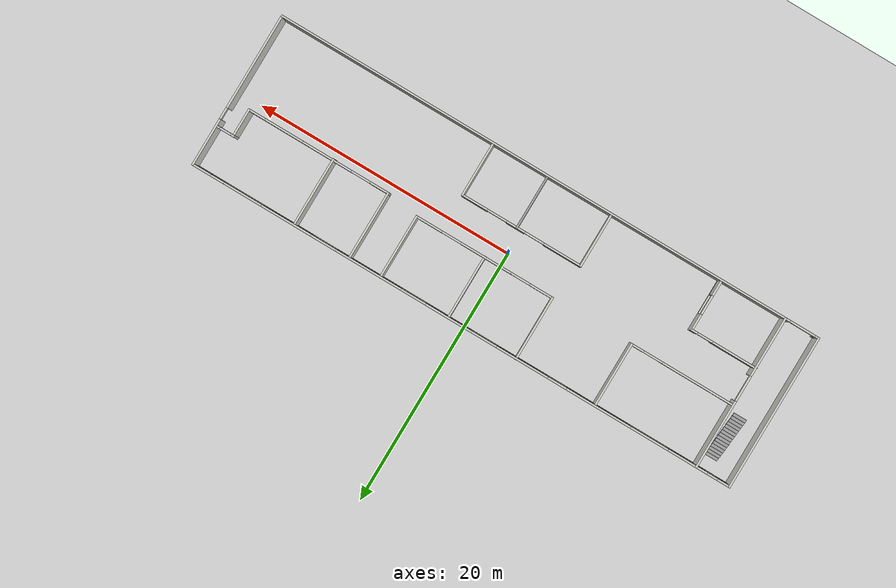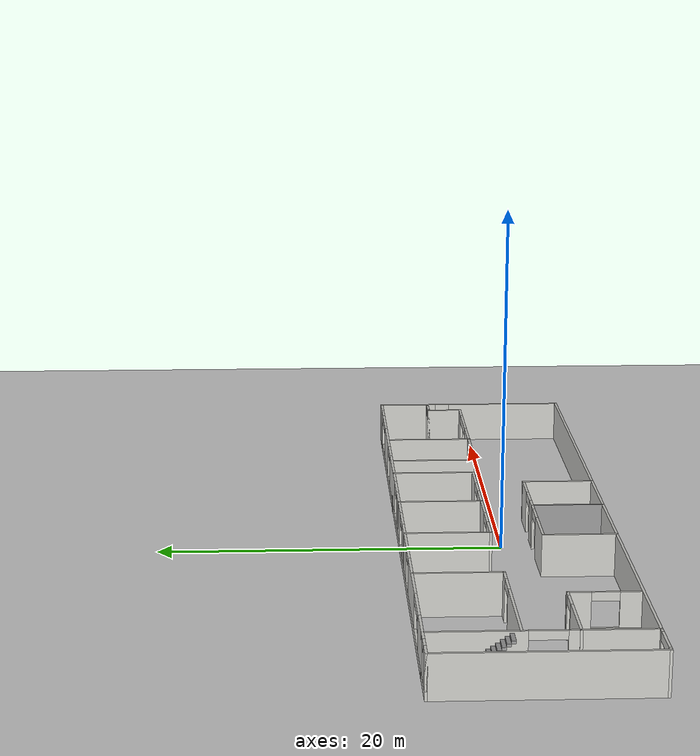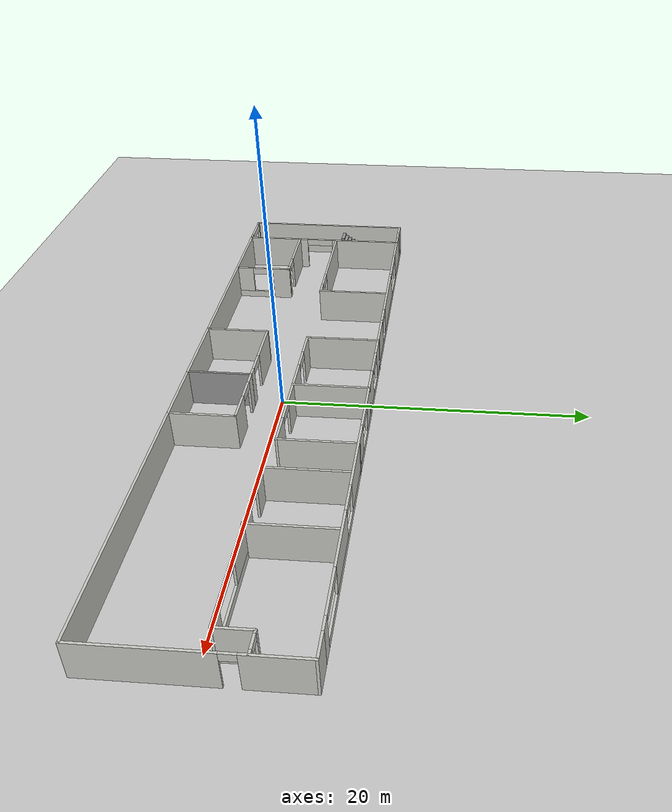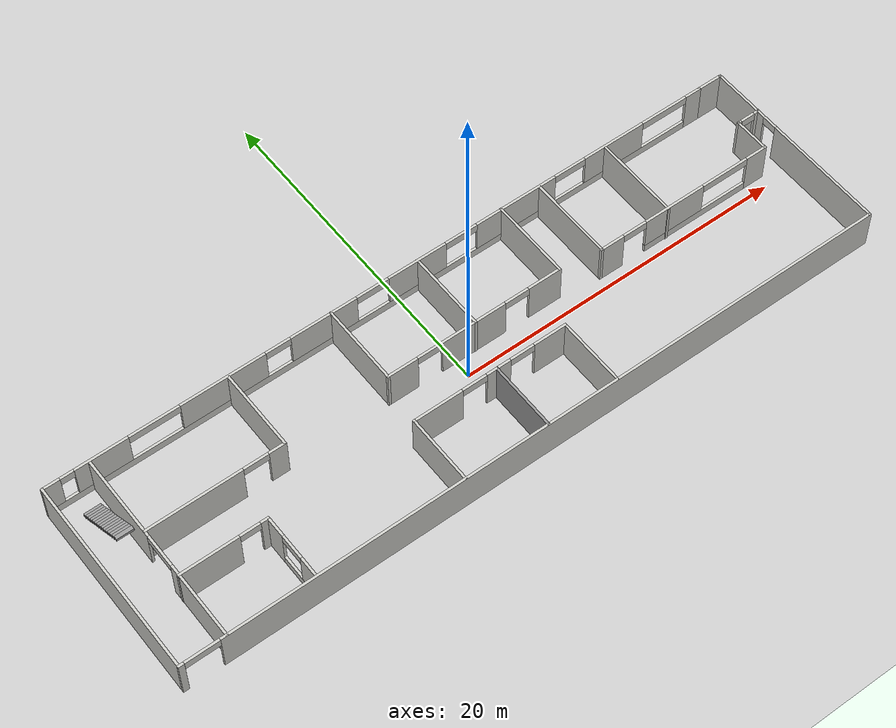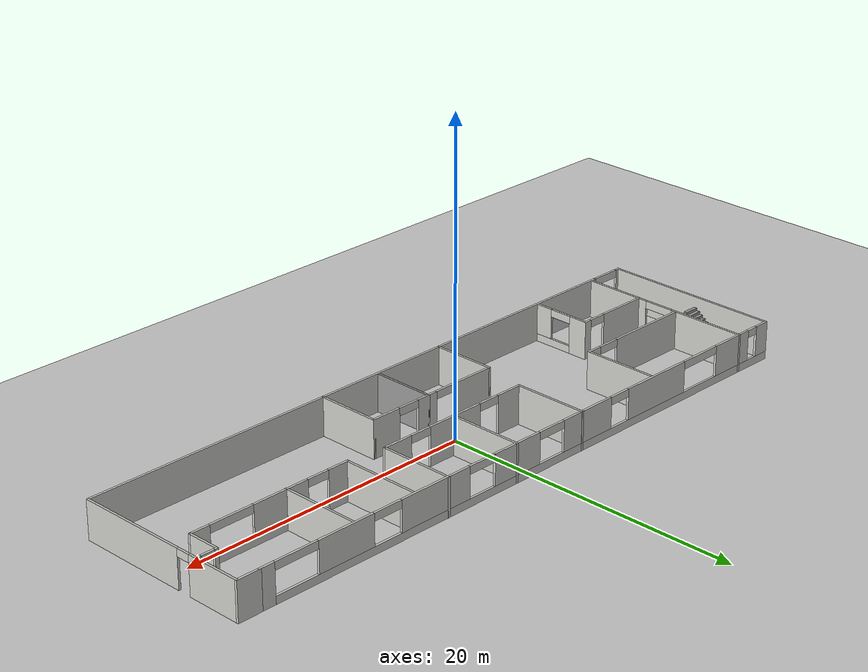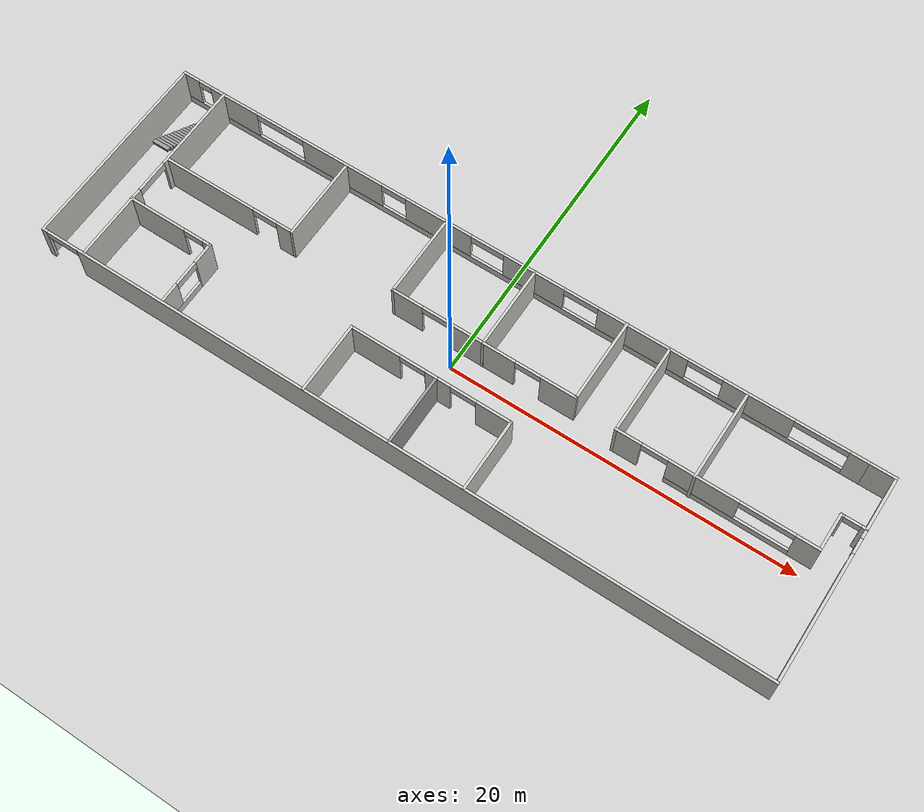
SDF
<sdf version="1.6">
 <world name="default">
  <model name="ground_plane">
   <static>1</static>
   <link name="link">
    <collision name="collision">
     <geometry><plane><normal>0 0 1</normal><size>100 100</size></plane></geometry>
     <surface><friction><ode><mu>100</mu><mu2>50</mu2></ode></friction></surface>
    </collision>
    <visual name="visual">
     <cast_shadows>0</cast_shadows>
     <geometry><plane><normal>0 0 1</normal><size>100 100</size></plane></geometry>
     <material>
      <script><uri>file://media/materials/scripts/gazebo.material</uri><name>Gazebo/Grey</name></script>
     </material>
    </visual>
   </link>
  </model>
  <model name="match_7">
   <pose>0.21975 -0.0084 0 0 -0 0</pose>
   <link name="Stairs_0">
    <visual name="Stairs_0_Visual_0">
     <pose>-19.5832 4.79108 0.083333 0 -0 0</pose>
     <geometry><box><size>1 0.233333 0.166667</size></box></geometry>
     <material>
      <script><uri>file://media/materials/scripts/gazebo.material</uri><name>Gazebo/Grey</name></script>
      <ambient>0.701961 0.717647 0.721569 1</ambient>
     </material>
    </visual>
    <collision name="Stairs_0_Collision_0">
     <geometry><box><size>1 0.233333 0.166667</size></box></geometry>
     <pose>-19.5832 4.79108 0.083333 0 -0 0</pose>
    </collision>
    <visual name="Stairs_0_Visual_1">
     <pose>-19.5832 4.55774 0.25 0 -0 0</pose>
     <geometry><box><size>1 0.233333 0.166667</size></box></geometry>
     <material>
      <script><uri>file://media/materials/scripts/gazebo.material</uri><name>Gazebo/Grey</name></script>
      <ambient>0.701961 0.717647 0.721569 1</ambient>
     </material>
    </visual>
    <collision name="Stairs_0_Collision_1">
     <geometry><box><size>1 0.233333 0.166667</size></box></geometry>
     <pose>-19.5832 4.55774 0.25 0 -0 0</pose>
    </collision>
    <visual name="Stairs_0_Visual_2">
     <pose>-19.5832 4.32441 0.416667 0 -0 0</pose>
     <geometry><box><size>1 0.233333 0.166667</size></box></geometry>
     <material>
      <script><uri>file://media/materials/scripts/gazebo.material</uri><name>Gazebo/Grey</name></script>
      <ambient>0.701961 0.717647 0.721569 1</ambient>
     </material>
    </visual>
    <collision name="Stairs_0_Collision_2">
     <geometry><box><size>1 0.233333 0.166667</size></box></geometry>
     <pose>-19.5832 4.32441 0.416667 0 -0 0</pose>
    </collision>
    <visual name="Stairs_0_Visual_3">
     <pose>-19.5832 4.09108 0.583333 0 -0 0</pose>
     <geometry><box><size>1 0.233333 0.166667</size></box></geometry>
     <material>
      <script><uri>file://media/materials/scripts/gazebo.material</uri><name>Gazebo/Grey</name></script>
      <ambient>0.701961 0.717647 0.721569 1</ambient>
     </material>
    </visual>
    <collision name="Stairs_0_Collision_3">
     <geometry><box><size>1 0.233333 0.166667</size></box></geometry>
     <pose>-19.5832 4.09108 0.583333 0 -0 0</pose>
    </collision>
    <visual name="Stairs_0_Visual_4">
     <pose>-19.5832 3.85774 0.75 0 -0 0</pose>
     <geometry><box><size>1 0.233333 0.166667</size></box></geometry>
     <material>
      <script><uri>file://media/materials/scripts/gazebo.material</uri><name>Gazebo/Grey</name></script>
      <ambient>0.701961 0.717647 0.721569 1</ambient>
     </material>
    </visual>
    <collision name="Stairs_0_Collision_4">
     <geometry><box><size>1 0.233333 0.166667</size></box></geometry>
     <pose>-19.5832 3.85774 0.75 0 -0 0</pose>
    </collision>
    <visual name="Stairs_0_Visual_5">
     <pose>-19.5832 3.62441 0.916667 0 -0 0</pose>
     <geometry><box><size>1 0.233333 0.166667</size></box></geometry>
     <material>
      <script><uri>file://media/materials/scripts/gazebo.material</uri><name>Gazebo/Grey</name></script>
      <ambient>0.701961 0.717647 0.721569 1</ambient>
     </material>
    </visual>
    <collision name="Stairs_0_Collision_5">
     <geometry><box><size>1 0.233333 0.166667</size></box></geometry>
     <pose>-19.5832 3.62441 0.916667 0 -0 0</pose>
    </collision>
    <visual name="Stairs_0_Visual_6">
     <pose>-19.5832 3.39108 1.08333 0 -0 0</pose>
     <geometry><box><size>1 0.233333 0.166667</size></box></geometry>
     <material>
      <script><uri>file://media/materials/scripts/gazebo.material</uri><name>Gazebo/Grey</name></script>
      <ambient>0.701961 0.717647 0.721569 1</ambient>
     </material>
    </visual>
    <collision name="Stairs_0_Collision_6">
     <geometry><box><size>1 0.233333 0.166667</size></box></geometry>
     <pose>-19.5832 3.39108 1.08333 0 -0 0</pose>
    </collision>
    <visual name="Stairs_0_Visual_7">
     <pose>-19.5832 3.15774 1.25 0 -0 0</pose>
     <geometry><box><size>1 0.233333 0.166667</size></box></geometry>
     <material>
      <script><uri>file://media/materials/scripts/gazebo.material</uri><name>Gazebo/Grey</name></script>
      <ambient>0.701961 0.717647 0.721569 1</ambient>
     </material>
    </visual>
    <collision name="Stairs_0_Collision_7">
     <geometry><box><size>1 0.233333 0.166667</size></box></geometry>
     <pose>-19.5832 3.15774 1.25 0 -0 0</pose>
    </collision>
    <visual name="Stairs_0_Visual_8">
     <pose>-19.5832 2.92441 1.41667 0 -0 0</pose>
     <geometry><box><size>1 0.233333 0.166667</size></box></geometry>
     <material>
      <script><uri>file://media/materials/scripts/gazebo.material</uri><name>Gazebo/Grey</name></script>
      <ambient>0.701961 0.717647 0.721569 1</ambient>
     </material>
    </visual>
    <collision name="Stairs_0_Collision_8">
     <geometry><box><size>1 0.233333 0.166667</size></box></geometry>
     <pose>-19.5832 2.92441 1.41667 0 -0 0</pose>
    </collision>
    <visual name="Stairs_0_Visual_9">
     <pose>-19.5832 2.69108 1.58333 0 -0 0</pose>
     <geometry><box><size>1 0.233333 0.166667</size></box></geometry>
     <material>
      <script><uri>file://media/materials/scripts/gazebo.material</uri><name>Gazebo/Grey</name></script>
      <ambient>0.701961 0.717647 0.721569 1</ambient>
     </material>
    </visual>
    <collision name="Stairs_0_Collision_9">
     <geometry><box><size>1 0.233333 0.166667</size></box></geometry>
     <pose>-19.5832 2.69108 1.58333 0 -0 0</pose>
    </collision>
    <visual name="Stairs_0_Visual_10">
     <pose>-19.5832 2.45774 1.75 0 -0 0</pose>
     <geometry><box><size>1 0.233333 0.166667</size></box></geometry>
     <material>
      <script><uri>file://media/materials/scripts/gazebo.material</uri><name>Gazebo/Grey</name></script>
      <ambient>0.701961 0.717647 0.721569 1</ambient>
     </material>
    </visual>
    <collision name="Stairs_0_Collision_10">
     <geometry><box><size>1 0.233333 0.166667</size></box></geometry>
     <pose>-19.5832 2.45774 1.75 0 -0 0</pose>
    </collision>
    <visual name="Stairs_0_Visual_11">
     <pose>-19.5832 2.22441 1.91667 0 -0 0</pose>
     <geometry><box><size>1 0.233333 0.166667</size></box></geometry>
     <material>
      <script><uri>file://media/materials/scripts/gazebo.material</uri><name>Gazebo/Grey</name></script>
      <ambient>0.701961 0.717647 0.721569 1</ambient>
     </material>
    </visual>
    <collision name="Stairs_0_Collision_11">
     <geometry><box><size>1 0.233333 0.166667</size></box></geometry>
     <pose>-19.5832 2.22441 1.91667 0 -0 0</pose>
    </collision>
    <visual name="Stairs_0_Visual_12">
     <pose>-19.5832 1.99108 2.08333 0 -0 0</pose>
     <geometry><box><size>1 0.233333 0.166667</size></box></geometry>
     <material>
      <script><uri>file://media/materials/scripts/gazebo.material</uri><name>Gazebo/Grey</name></script>
      <ambient>0.701961 0.717647 0.721569 1</ambient>
     </material>
    </visual>
    <collision name="Stairs_0_Collision_12">
     <geometry><box><size>1 0.233333 0.166667</size></box></geometry>
     <pose>-19.5832 1.99108 2.08333 0 -0 0</pose>
    </collision>
    <visual name="Stairs_0_Visual_13">
     <pose>-19.5832 1.75774 2.25 0 -0 0</pose>
     <geometry><box><size>1 0.233333 0.166667</size></box></geometry>
     <material>
      <script><uri>file://media/materials/scripts/gazebo.material</uri><name>Gazebo/Grey</name></script>
      <ambient>0.701961 0.717647 0.721569 1</ambient>
     </material>
    </visual>
    <collision name="Stairs_0_Collision_13">
     <geometry><box><size>1 0.233333 0.166667</size></box></geometry>
     <pose>-19.5832 1.75774 2.25 0 -0 0</pose>
    </collision>
    <visual name="Stairs_0_Visual_14">
     <pose>-19.5832 1.52441 2.41667 0 -0 0</pose>
     <geometry><box><size>1 0.233333 0.166667</size></box></geometry>
     <material>
      <script><uri>file://media/materials/scripts/gazebo.material</uri><name>Gazebo/Grey</name></script>
      <ambient>0.701961 0.717647 0.721569 1</ambient>
     </material>
    </visual>
    <collision name="Stairs_0_Collision_14">
     <geometry><box><size>1 0.233333 0.166667</size></box></geometry>
     <pose>-19.5832 1.52441 2.41667 0 -0 0</pose>
    </collision>
   </link>
   <link name="Wall_1">
    <pose>-0.75 5.91533 0 0 -0 3.14159</pose>
    <visual name="Wall_1_Visual_0">
     <pose>-20.2308 0 1.25 0 -0 0</pose>
     <geometry><box><size>1.03842 0.15 2.5</size></box></geometry>
     <material>
      <script><uri>file://media/materials/scripts/gazebo.material</uri><name>Gazebo/CeilingTiled</name></script>
      <ambient>1 1 1 1</ambient>
     </material>
    </visual>
    <collision name="Wall_1_Collision_0">
     <geometry><box><size>1.03842 0.15 2.5</size></box></geometry>
     <pose>-20.2308 0 1.25 0 -0 0</pose>
    </collision>
    <visual name="Wall_1_Visual_1">
     <pose>0.519211 0 0.25 0 -0 0</pose>
     <geometry><box><size>40.4616 0.15 0.5</size></box></geometry>
     <material>
      <script><uri>file://media/materials/scripts/gazebo.material</uri><name>Gazebo/CeilingTiled</name></script>
      <ambient>1 1 1 1</ambient>
     </material>
    </visual>
    <collision name="Wall_1_Collision_1">
     <geometry><box><size>40.4616 0.15 0.5</size></box></geometry>
     <pose>0.519211 0 0.25 0 -0 0</pose>
    </collision>
    <visual name="Wall_1_Visual_2">
     <pose>-14.7343 0 1.5 0 -0 0</pose>
     <geometry><box><size>3.95454 0.15 2</size></box></geometry>
     <material>
      <script><uri>file://media/materials/scripts/gazebo.material</uri><name>Gazebo/CeilingTiled</name></script>
      <ambient>1 1 1 1</ambient>
     </material>
    </visual>
    <collision name="Wall_1_Collision_2">
     <geometry><box><size>3.95454 0.15 2</size></box></geometry>
     <pose>-14.7343 0 1.5 0 -0 0</pose>
    </collision>
    <visual name="Wall_1_Visual_3">
     <pose>-8.16269 0 1.5 0 -0 0</pose>
     <geometry><box><size>5.1887 0.15 2</size></box></geometry>
     <material>
      <script><uri>file://media/materials/scripts/gazebo.material</uri><name>Gazebo/CeilingTiled</name></script>
      <ambient>1 1 1 1</ambient>
     </material>
    </visual>
    <collision name="Wall_1_Collision_3">
     <geometry><box><size>5.1887 0.15 2</size></box></geometry>
     <pose>-8.16269 0 1.5 0 -0 0</pose>
    </collision>
    <visual name="Wall_1_Visual_4">
     <pose>-1.74639 0 1.5 0 -0 0</pose>
     <geometry><box><size>3.6439 0.15 2</size></box></geometry>
     <material>
      <script><uri>file://media/materials/scripts/gazebo.material</uri><name>Gazebo/CeilingTiled</name></script>
      <ambient>1 1 1 1</ambient>
     </material>
    </visual>
    <collision name="Wall_1_Collision_4">
     <geometry><box><size>3.6439 0.15 2</size></box></geometry>
     <pose>-1.74639 0 1.5 0 -0 0</pose>
    </collision>
    <visual name="Wall_1_Visual_5">
     <pose>4.11915 0 1.5 0 -0 0</pose>
     <geometry><box><size>4.08719 0.15 2</size></box></geometry>
     <material>
      <script><uri>file://media/materials/scripts/gazebo.material</uri><name>Gazebo/CeilingTiled</name></script>
      <ambient>1 1 1 1</ambient>
     </material>
    </visual>
    <collision name="Wall_1_Collision_5">
     <geometry><box><size>4.08719 0.15 2</size></box></geometry>
     <pose>4.11915 0 1.5 0 -0 0</pose>
    </collision>
    <visual name="Wall_1_Visual_6">
     <pose>10.219 0 1.5 0 -0 0</pose>
     <geometry><box><size>5.1125 0.15 2</size></box></geometry>
     <material>
      <script><uri>file://media/materials/scripts/gazebo.material</uri><name>Gazebo/CeilingTiled</name></script>
      <ambient>1 1 1 1</ambient>
     </material>
    </visual>
    <collision name="Wall_1_Collision_6">
     <geometry><box><size>5.1125 0.15 2</size></box></geometry>
     <pose>10.219 0 1.5 0 -0 0</pose>
    </collision>
    <visual name="Wall_1_Visual_7">
     <pose>17.3336 0 1.5 0 -0 0</pose>
     <geometry><box><size>3.1168 0.15 2</size></box></geometry>
     <material>
      <script><uri>file://media/materials/scripts/gazebo.material</uri><name>Gazebo/CeilingTiled</name></script>
      <ambient>1 1 1 1</ambient>
     </material>
    </visual>
    <collision name="Wall_1_Collision_7">
     <geometry><box><size>3.1168 0.15 2</size></box></geometry>
     <pose>17.3336 0 1.5 0 -0 0</pose>
    </collision>
    <visual name="Wall_1_Visual_8">
     <pose>20.221 0 1.5 0 -0 0</pose>
     <geometry><box><size>1.05796 0.15 2</size></box></geometry>
     <material>
      <script><uri>file://media/materials/scripts/gazebo.material</uri><name>Gazebo/CeilingTiled</name></script>
      <ambient>1 1 1 1</ambient>
     </material>
    </visual>
    <collision name="Wall_1_Collision_8">
     <geometry><box><size>1.05796 0.15 2</size></box></geometry>
     <pose>20.221 0 1.5 0 -0 0</pose>
    </collision>
    <visual name="Wall_1_Visual_9">
     <pose>-18.2116 0 2.25 0 -0 0</pose>
     <geometry><box><size>3 0.15 0.5</size></box></geometry>
     <material>
      <script><uri>file://media/materials/scripts/gazebo.material</uri><name>Gazebo/CeilingTiled</name></script>
      <ambient>1 1 1 1</ambient>
     </material>
    </visual>
    <collision name="Wall_1_Collision_9">
     <geometry><box><size>3 0.15 0.5</size></box></geometry>
     <pose>-18.2116 0 2.25 0 -0 0</pose>
    </collision>
    <visual name="Wall_1_Visual_10">
     <pose>-11.757 0 2.25 0 -0 0</pose>
     <geometry><box><size>2 0.15 0.5</size></box></geometry>
     <material>
      <script><uri>file://media/materials/scripts/gazebo.material</uri><name>Gazebo/CeilingTiled</name></script>
      <ambient>1 1 1 1</ambient>
     </material>
    </visual>
    <collision name="Wall_1_Collision_10">
     <geometry><box><size>2 0.15 0.5</size></box></geometry>
     <pose>-11.757 0 2.25 0 -0 0</pose>
    </collision>
    <visual name="Wall_1_Visual_11">
     <pose>-4.56834 0 2.25 0 -0 0</pose>
     <geometry><box><size>2 0.15 0.5</size></box></geometry>
     <material>
      <script><uri>file://media/materials/scripts/gazebo.material</uri><name>Gazebo/CeilingTiled</name></script>
      <ambient>1 1 1 1</ambient>
     </material>
    </visual>
    <collision name="Wall_1_Collision_11">
     <geometry><box><size>2 0.15 0.5</size></box></geometry>
     <pose>-4.56834 0 2.25 0 -0 0</pose>
    </collision>
    <visual name="Wall_1_Visual_12">
     <pose>1.07556 0 2.25 0 -0 0</pose>
     <geometry><box><size>2 0.15 0.5</size></box></geometry>
     <material>
      <script><uri>file://media/materials/scripts/gazebo.material</uri><name>Gazebo/CeilingTiled</name></script>
      <ambient>1 1 1 1</ambient>
     </material>
    </visual>
    <collision name="Wall_1_Collision_12">
     <geometry><box><size>2 0.15 0.5</size></box></geometry>
     <pose>1.07556 0 2.25 0 -0 0</pose>
    </collision>
    <visual name="Wall_1_Visual_13">
     <pose>6.91275 0 2.25 0 -0 0</pose>
     <geometry><box><size>1.5 0.15 0.5</size></box></geometry>
     <material>
      <script><uri>file://media/materials/scripts/gazebo.material</uri><name>Gazebo/CeilingTiled</name></script>
      <ambient>1 1 1 1</ambient>
     </material>
    </visual>
    <collision name="Wall_1_Collision_13">
     <geometry><box><size>1.5 0.15 0.5</size></box></geometry>
     <pose>6.91275 0 2.25 0 -0 0</pose>
    </collision>
    <visual name="Wall_1_Visual_14">
     <pose>14.2752 0 2.25 0 -0 0</pose>
     <geometry><box><size>3 0.15 0.5</size></box></geometry>
     <material>
      <script><uri>file://media/materials/scripts/gazebo.material</uri><name>Gazebo/CeilingTiled</name></script>
      <ambient>1 1 1 1</ambient>
     </material>
    </visual>
    <collision name="Wall_1_Collision_14">
     <geometry><box><size>3 0.15 0.5</size></box></geometry>
     <pose>14.2752 0 2.25 0 -0 0</pose>
    </collision>
    <visual name="Wall_1_Visual_15">
     <pose>19.292 0 2.25 0 -0 0</pose>
     <geometry><box><size>0.8 0.15 0.5</size></box></geometry>
     <material>
      <script><uri>file://media/materials/scripts/gazebo.material</uri><name>Gazebo/CeilingTiled</name></script>
      <ambient>1 1 1 1</ambient>
     </material>
    </visual>
    <collision name="Wall_1_Collision_15">
     <geometry><box><size>0.8 0.15 0.5</size></box></geometry>
     <pose>19.292 0 2.25 0 -0 0</pose>
    </collision>
   </link>
   <link name="Wall_10">
    <collision name="Wall_10_Collision">
     <geometry><box><size>5.25 0.15 2.5</size></box></geometry>
     <pose>0 0 1.25 0 -0 0</pose>
    </collision>
    <visual name="Wall_10_Visual">
     <pose>0 0 1.25 0 -0 0</pose>
     <geometry><box><size>5.25 0.15 2.5</size></box></geometry>
     <material>
      <script><uri>file://media/materials/scripts/gazebo.material</uri><name>Gazebo/CeilingTiled</name></script>
      <ambient>1 1 1 1</ambient>
     </material>
    </visual>
    <pose>8.9562 3.2768 0 0 -0 1.5708</pose>
   </link>
   <link name="Wall_12">
    <collision name="Wall_12_Collision">
     <geometry><box><size>5 0.15 2.5</size></box></geometry>
     <pose>0 0 1.25 0 -0 0</pose>
    </collision>
    <visual name="Wall_12_Visual">
     <pose>0 0 1.25 0 -0 0</pose>
     <geometry><box><size>5 0.15 2.5</size></box></geometry>
     <material>
      <script><uri>file://media/materials/scripts/gazebo.material</uri><name>Gazebo/CeilingTiled</name></script>
      <ambient>1 1 1 1</ambient>
     </material>
    </visual>
    <pose>6.46195 3.50968 0 0 0 -1.5708</pose>
   </link>
   <link name="Wall_13">
    <pose>1.03695 1.08468 0 0 -0 3.14159</pose>
    <visual name="Wall_13_Visual_0">
     <pose>-4.45451 0 1.25 0 -0 0</pose>
     <geometry><box><size>2.09097 0.15 2.5</size></box></geometry>
     <material>
      <script><uri>file://media/materials/scripts/gazebo.material</uri><name>Gazebo/CeilingTiled</name></script>
      <ambient>1 1 1 1</ambient>
     </material>
    </visual>
    <collision name="Wall_13_Collision_0">
     <geometry><box><size>2.09097 0.15 2.5</size></box></geometry>
     <pose>-4.45451 0 1.25 0 -0 0</pose>
    </collision>
    <visual name="Wall_13_Visual_1">
     <pose>0.101743 0 1.25 0 -0 0</pose>
     <geometry><box><size>4.02154 0.15 2.5</size></box></geometry>
     <material>
      <script><uri>file://media/materials/scripts/gazebo.material</uri><name>Gazebo/CeilingTiled</name></script>
      <ambient>1 1 1 1</ambient>
     </material>
    </visual>
    <collision name="Wall_13_Collision_1">
     <geometry><box><size>4.02154 0.15 2.5</size></box></geometry>
     <pose>0.101743 0 1.25 0 -0 0</pose>
    </collision>
    <visual name="Wall_13_Visual_2">
     <pose>4.55626 0 1.25 0 -0 0</pose>
     <geometry><box><size>1.88749 0.15 2.5</size></box></geometry>
     <material>
      <script><uri>file://media/materials/scripts/gazebo.material</uri><name>Gazebo/CeilingTiled</name></script>
      <ambient>1 1 1 1</ambient>
     </material>
    </visual>
    <collision name="Wall_13_Collision_2">
     <geometry><box><size>1.88749 0.15 2.5</size></box></geometry>
     <pose>4.55626 0 1.25 0 -0 0</pose>
    </collision>
    <visual name="Wall_13_Visual_3">
     <pose>-2.65903 0 2.25 0 -0 0</pose>
     <geometry><box><size>1.5 0.15 0.5</size></box></geometry>
     <material>
      <script><uri>file://media/materials/scripts/gazebo.material</uri><name>Gazebo/CeilingTiled</name></script>
      <ambient>1 1 1 1</ambient>
     </material>
    </visual>
    <collision name="Wall_13_Collision_3">
     <geometry><box><size>1.5 0.15 0.5</size></box></geometry>
     <pose>-2.65903 0 2.25 0 -0 0</pose>
    </collision>
    <visual name="Wall_13_Visual_4">
     <pose>2.86251 0 2.25 0 -0 0</pose>
     <geometry><box><size>1.5 0.15 0.5</size></box></geometry>
     <material>
      <script><uri>file://media/materials/scripts/gazebo.material</uri><name>Gazebo/CeilingTiled</name></script>
      <ambient>1 1 1 1</ambient>
     </material>
    </visual>
    <collision name="Wall_13_Collision_4">
     <geometry><box><size>1.5 0.15 0.5</size></box></geometry>
     <pose>2.86251 0 2.25 0 -0 0</pose>
    </collision>
   </link>
   <link name="Wall_14">
    <collision name="Wall_14_Collision">
     <geometry><box><size>5 0.15 2.5</size></box></geometry>
     <pose>0 0 1.25 0 -0 0</pose>
    </collision>
    <visual name="Wall_14_Visual">
     <pose>0 0 1.25 0 -0 0</pose>
     <geometry><box><size>5 0.15 2.5</size></box></geometry>
     <material>
      <script><uri>file://media/materials/scripts/gazebo.material</uri><name>Gazebo/CeilingTiled</name></script>
      <ambient>1 1 1 1</ambient>
     </material>
    </visual>
    <pose>-4.38805 3.50968 0 0 -0 1.5708</pose>
   </link>
   <link name="Wall_16">
    <collision name="Wall_16_Collision">
     <geometry><box><size>5.25 0.15 2.5</size></box></geometry>
     <pose>0 0 1.25 0 -0 0</pose>
    </collision>
    <visual name="Wall_16_Visual">
     <pose>0 0 1.25 0 -0 0</pose>
     <geometry><box><size>5.25 0.15 2.5</size></box></geometry>
     <material>
      <script><uri>file://media/materials/scripts/gazebo.material</uri><name>Gazebo/CeilingTiled</name></script>
      <ambient>1 1 1 1</ambient>
     </material>
    </visual>
    <pose>13.3654 3.23435 0 0 -0 1.5708</pose>
   </link>
   <link name="Wall_18">
    <pose>-18.7767 -0.006144 0 0 -0 1.5708</pose>
    <visual name="Wall_18_Visual_0">
     <pose>-3.6617 0 1.25 0 -0 0</pose>
     <geometry><box><size>4.6766 0.15 2.5</size></box></geometry>
     <material>
      <script><uri>file://media/materials/scripts/gazebo.material</uri><name>Gazebo/CeilingTiled</name></script>
      <ambient>1 1 1 1</ambient>
     </material>
    </visual>
    <collision name="Wall_18_Collision_0">
     <geometry><box><size>4.6766 0.15 2.5</size></box></geometry>
     <pose>-3.6617 0 1.25 0 -0 0</pose>
    </collision>
    <visual name="Wall_18_Visual_1">
     <pose>3.3383 0 1.25 0 -0 0</pose>
     <geometry><box><size>5.3234 0.15 2.5</size></box></geometry>
     <material>
      <script><uri>file://media/materials/scripts/gazebo.material</uri><name>Gazebo/CeilingTiled</name></script>
      <ambient>1 1 1 1</ambient>
     </material>
    </visual>
    <collision name="Wall_18_Collision_1">
     <geometry><box><size>5.3234 0.15 2.5</size></box></geometry>
     <pose>3.3383 0 1.25 0 -0 0</pose>
    </collision>
    <visual name="Wall_18_Visual_2">
     <pose>-0.323398 0 2.25 0 -0 0</pose>
     <geometry><box><size>2 0.15 0.5</size></box></geometry>
     <material>
      <script><uri>file://media/materials/scripts/gazebo.material</uri><name>Gazebo/CeilingTiled</name></script>
      <ambient>1 1 1 1</ambient>
     </material>
    </visual>
    <collision name="Wall_18_Collision_2">
     <geometry><box><size>2 0.15 0.5</size></box></geometry>
     <pose>-0.323398 0 2.25 0 -0 0</pose>
    </collision>
   </link>
   <link name="Wall_2">
    <collision name="Wall_2_Collision">
     <geometry><box><size>12 0.15 2.5</size></box></geometry>
     <pose>0 0 1.25 0 -0 0</pose>
    </collision>
    <visual name="Wall_2_Visual">
     <pose>0 0 1.25 0 -0 0</pose>
     <geometry><box><size>12 0.15 2.5</size></box></geometry>
     <material>
      <script><uri>file://media/materials/scripts/gazebo.material</uri><name>Gazebo/CeilingTiled</name></script>
      <ambient>1 1 1 1</ambient>
     </material>
    </visual>
    <pose>-21.425 -0.009675 0 0 0 -1.5708</pose>
   </link>
   <link name="Wall_21">
    <pose>-14.7152 1.00336 0 0 -0 0</pose>
    <visual name="Wall_21_Visual_0">
     <pose>-1.26951 0 1.25 0 -0 0</pose>
     <geometry><box><size>5.71098 0.15 2.5</size></box></geometry>
     <material>
      <script><uri>file://media/materials/scripts/gazebo.material</uri><name>Gazebo/CeilingTiled</name></script>
      <ambient>1 1 1 1</ambient>
     </material>
    </visual>
    <collision name="Wall_21_Collision_0">
     <geometry><box><size>5.71098 0.15 2.5</size></box></geometry>
     <pose>-1.26951 0 1.25 0 -0 0</pose>
    </collision>
    <visual name="Wall_21_Visual_1">
     <pose>3.60549 0 1.25 0 -0 0</pose>
     <geometry><box><size>1.03902 0.15 2.5</size></box></geometry>
     <material>
      <script><uri>file://media/materials/scripts/gazebo.material</uri><name>Gazebo/CeilingTiled</name></script>
      <ambient>1 1 1 1</ambient>
     </material>
    </visual>
    <collision name="Wall_21_Collision_1">
     <geometry><box><size>1.03902 0.15 2.5</size></box></geometry>
     <pose>3.60549 0 1.25 0 -0 0</pose>
    </collision>
    <visual name="Wall_21_Visual_2">
     <pose>2.33598 0 2.25 0 -0 0</pose>
     <geometry><box><size>1.5 0.15 0.5</size></box></geometry>
     <material>
      <script><uri>file://media/materials/scripts/gazebo.material</uri><name>Gazebo/CeilingTiled</name></script>
      <ambient>1 1 1 1</ambient>
     </material>
    </visual>
    <collision name="Wall_21_Collision_2">
     <geometry><box><size>1.5 0.15 0.5</size></box></geometry>
     <pose>2.33598 0 2.25 0 -0 0</pose>
    </collision>
   </link>
   <link name="Wall_22">
    <collision name="Wall_22_Collision">
     <geometry><box><size>5 0.15 2.5</size></box></geometry>
     <pose>0 0 1.25 0 -0 0</pose>
    </collision>
    <visual name="Wall_22_Visual">
     <pose>0 0 1.25 0 -0 0</pose>
     <geometry><box><size>5 0.15 2.5</size></box></geometry>
     <material>
      <script><uri>file://media/materials/scripts/gazebo.material</uri><name>Gazebo/CeilingTiled</name></script>
      <ambient>1 1 1 1</ambient>
     </material>
    </visual>
    <pose>-10.6652 3.42836 0 0 -0 1.5708</pose>
   </link>
   <link name="Wall_24">
    <pose>-16.2497 -1.96364 0 0 -0 0</pose>
    <visual name="Wall_24_Visual_0">
     <pose>-0.86263 0 1.25 0 -0 0</pose>
     <geometry><box><size>3.52474 0.15 2.5</size></box></geometry>
     <material>
      <script><uri>file://media/materials/scripts/gazebo.material</uri><name>Gazebo/CeilingTiled</name></script>
      <ambient>1 1 1 1</ambient>
     </material>
    </visual>
    <collision name="Wall_24_Collision_0">
     <geometry><box><size>3.52474 0.15 2.5</size></box></geometry>
     <pose>-0.86263 0 1.25 0 -0 0</pose>
    </collision>
    <visual name="Wall_24_Visual_1">
     <pose>2.36237 0 1.25 0 -0 0</pose>
     <geometry><box><size>0.525259 0.15 2.5</size></box></geometry>
     <material>
      <script><uri>file://media/materials/scripts/gazebo.material</uri><name>Gazebo/CeilingTiled</name></script>
      <ambient>1 1 1 1</ambient>
     </material>
    </visual>
    <collision name="Wall_24_Collision_1">
     <geometry><box><size>0.525259 0.15 2.5</size></box></geometry>
     <pose>2.36237 0 1.25 0 -0 0</pose>
    </collision>
    <visual name="Wall_24_Visual_2">
     <pose>1.49974 0 2.25 0 -0 0</pose>
     <geometry><box><size>1.2 0.15 0.5</size></box></geometry>
     <material>
      <script><uri>file://media/materials/scripts/gazebo.material</uri><name>Gazebo/CeilingTiled</name></script>
      <ambient>1 1 1 1</ambient>
     </material>
    </visual>
    <collision name="Wall_24_Collision_2">
     <geometry><box><size>1.2 0.15 0.5</size></box></geometry>
     <pose>1.49974 0 2.25 0 -0 0</pose>
    </collision>
   </link>
   <link name="Wall_25">
    <pose>-13.6997 -3.88864 0 0 0 -1.5708</pose>
    <visual name="Wall_25_Visual_0">
     <pose>-1.34208 0 1.25 0 -0 0</pose>
     <geometry><box><size>1.31584 0.15 2.5</size></box></geometry>
     <material>
      <script><uri>file://media/materials/scripts/gazebo.material</uri><name>Gazebo/CeilingTiled</name></script>
      <ambient>1 1 1 1</ambient>
     </material>
    </visual>
    <collision name="Wall_25_Collision_0">
     <geometry><box><size>1.31584 0.15 2.5</size></box></geometry>
     <pose>-1.34208 0 1.25 0 -0 0</pose>
    </collision>
    <visual name="Wall_25_Visual_1">
     <pose>0.65792 0 0.25 0 -0 0</pose>
     <geometry><box><size>2.68416 0.15 0.5</size></box></geometry>
     <material>
      <script><uri>file://media/materials/scripts/gazebo.material</uri><name>Gazebo/CeilingTiled</name></script>
      <ambient>1 1 1 1</ambient>
     </material>
    </visual>
    <collision name="Wall_25_Collision_1">
     <geometry><box><size>2.68416 0.15 0.5</size></box></geometry>
     <pose>0.65792 0 0.25 0 -0 0</pose>
    </collision>
    <visual name="Wall_25_Visual_2">
     <pose>1.40792 0 1.5 0 -0 0</pose>
     <geometry><box><size>1.18416 0.15 2</size></box></geometry>
     <material>
      <script><uri>file://media/materials/scripts/gazebo.material</uri><name>Gazebo/CeilingTiled</name></script>
      <ambient>1 1 1 1</ambient>
     </material>
    </visual>
    <collision name="Wall_25_Collision_2">
     <geometry><box><size>1.18416 0.15 2</size></box></geometry>
     <pose>1.40792 0 1.5 0 -0 0</pose>
    </collision>
    <visual name="Wall_25_Visual_3">
     <pose>0.06584 0 2.25 0 -0 0</pose>
     <geometry><box><size>1.5 0.15 0.5</size></box></geometry>
     <material>
      <script><uri>file://media/materials/scripts/gazebo.material</uri><name>Gazebo/CeilingTiled</name></script>
      <ambient>1 1 1 1</ambient>
     </material>
    </visual>
    <collision name="Wall_25_Collision_3">
     <geometry><box><size>1.5 0.15 0.5</size></box></geometry>
     <pose>0.06584 0 2.25 0 -0 0</pose>
    </collision>
   </link>
   <link name="Wall_28">
    <collision name="Wall_28_Collision">
     <geometry><box><size>5 0.15 2.5</size></box></geometry>
     <pose>0 0 1.25 0 -0 0</pose>
    </collision>
    <visual name="Wall_28_Visual">
     <pose>0 0 1.25 0 -0 0</pose>
     <geometry><box><size>5 0.15 2.5</size></box></geometry>
     <material>
      <script><uri>file://media/materials/scripts/gazebo.material</uri><name>Gazebo/CeilingTiled</name></script>
      <ambient>1 1 1 1</ambient>
     </material>
    </visual>
    <pose>1.044 3.49253 0 0 -0 1.5708</pose>
   </link>
   <link name="Wall_3">
    <pose>0 -5.93468 0 0 -0 0</pose>
    <visual name="Wall_3_Visual_0">
     <pose>-21.3246 0 1.25 0 -0 0</pose>
     <geometry><box><size>0.350892 0.15 2.5</size></box></geometry>
     <material>
      <script><uri>file://media/materials/scripts/gazebo.material</uri><name>Gazebo/CeilingTiled</name></script>
      <ambient>1 1 1 1</ambient>
     </material>
    </visual>
    <collision name="Wall_3_Collision_0">
     <geometry><box><size>0.350892 0.15 2.5</size></box></geometry>
     <pose>-21.3246 0 1.25 0 -0 0</pose>
    </collision>
    <visual name="Wall_3_Visual_1">
     <pose>1.17545 0 1.25 0 -0 0</pose>
     <geometry><box><size>40.6491 0.15 2.5</size></box></geometry>
     <material>
      <script><uri>file://media/materials/scripts/gazebo.material</uri><name>Gazebo/CeilingTiled</name></script>
      <ambient>1 1 1 1</ambient>
     </material>
    </visual>
    <collision name="Wall_3_Collision_1">
     <geometry><box><size>40.6491 0.15 2.5</size></box></geometry>
     <pose>1.17545 0 1.25 0 -0 0</pose>
    </collision>
    <visual name="Wall_3_Visual_2">
     <pose>-20.1491 0 2.25 0 -0 0</pose>
     <geometry><box><size>2 0.15 0.5</size></box></geometry>
     <material>
      <script><uri>file://media/materials/scripts/gazebo.material</uri><name>Gazebo/CeilingTiled</name></script>
      <ambient>1 1 1 1</ambient>
     </material>
    </visual>
    <collision name="Wall_3_Collision_2">
     <geometry><box><size>2 0.15 0.5</size></box></geometry>
     <pose>-20.1491 0 2.25 0 -0 0</pose>
    </collision>
   </link>
   <link name="Wall_32">
    <collision name="Wall_32_Collision">
     <geometry><box><size>4.25 0.15 2.5</size></box></geometry>
     <pose>0 0 1.25 0 -0 0</pose>
    </collision>
    <visual name="Wall_32_Visual">
     <pose>0 0 1.25 0 -0 0</pose>
     <geometry><box><size>4.25 0.15 2.5</size></box></geometry>
     <material>
      <script><uri>file://media/materials/scripts/gazebo.material</uri><name>Gazebo/CeilingTiled</name></script>
      <ambient>1 1 1 1</ambient>
     </material>
    </visual>
    <pose>-4.91517 -3.84696 0 0 -0 1.5708</pose>
   </link>
   <link name="Wall_33">
    <pose>-2.36517 -1.79696 0 0 -0 0</pose>
    <visual name="Wall_33_Visual_0">
     <pose>-1.11101 0 1.25 0 -0 0</pose>
     <geometry><box><size>3.02797 0.15 2.5</size></box></geometry>
     <material>
      <script><uri>file://media/materials/scripts/gazebo.material</uri><name>Gazebo/CeilingTiled</name></script>
      <ambient>1 1 1 1</ambient>
     </material>
    </visual>
    <collision name="Wall_33_Collision_0">
     <geometry><box><size>3.02797 0.15 2.5</size></box></geometry>
     <pose>-1.11101 0 1.25 0 -0 0</pose>
    </collision>
    <visual name="Wall_33_Visual_1">
     <pose>2.26399 0 1.25 0 -0 0</pose>
     <geometry><box><size>0.722026 0.15 2.5</size></box></geometry>
     <material>
      <script><uri>file://media/materials/scripts/gazebo.material</uri><name>Gazebo/CeilingTiled</name></script>
      <ambient>1 1 1 1</ambient>
     </material>
    </visual>
    <collision name="Wall_33_Collision_1">
     <geometry><box><size>0.722026 0.15 2.5</size></box></geometry>
     <pose>2.26399 0 1.25 0 -0 0</pose>
    </collision>
    <visual name="Wall_33_Visual_2">
     <pose>1.15297 0 2.25 0 -0 0</pose>
     <geometry><box><size>1.5 0.15 0.5</size></box></geometry>
     <material>
      <script><uri>file://media/materials/scripts/gazebo.material</uri><name>Gazebo/CeilingTiled</name></script>
      <ambient>1 1 1 1</ambient>
     </material>
    </visual>
    <collision name="Wall_33_Collision_2">
     <geometry><box><size>1.5 0.15 0.5</size></box></geometry>
     <pose>1.15297 0 2.25 0 -0 0</pose>
    </collision>
   </link>
   <link name="Wall_34">
    <collision name="Wall_34_Collision">
     <geometry><box><size>4.25 0.15 2.5</size></box></geometry>
     <pose>0 0 1.25 0 -0 0</pose>
    </collision>
    <visual name="Wall_34_Visual">
     <pose>0 0 1.25 0 -0 0</pose>
     <geometry><box><size>4.25 0.15 2.5</size></box></geometry>
     <material>
      <script><uri>file://media/materials/scripts/gazebo.material</uri><name>Gazebo/Grey</name></script>
      <ambient>1 1 1 1</ambient>
     </material>
    </visual>
    <pose>0.184826 -3.84696 0 0 0 -1.5708</pose>
   </link>
   <link name="Wall_36">
    <pose>2.35983 -1.79696 0 0 -0 0</pose>
    <visual name="Wall_36_Visual_0">
     <pose>-1.78975 0 1.25 0 -0 0</pose>
     <geometry><box><size>0.920497 0.15 2.5</size></box></geometry>
     <material>
      <script><uri>file://media/materials/scripts/gazebo.material</uri><name>Gazebo/CeilingTiled</name></script>
      <ambient>1 1 1 1</ambient>
     </material>
    </visual>
    <collision name="Wall_36_Collision_0">
     <geometry><box><size>0.920497 0.15 2.5</size></box></geometry>
     <pose>-1.78975 0 1.25 0 -0 0</pose>
    </collision>
    <visual name="Wall_36_Visual_1">
     <pose>1.21025 0 1.25 0 -0 0</pose>
     <geometry><box><size>2.0795 0.15 2.5</size></box></geometry>
     <material>
      <script><uri>file://media/materials/scripts/gazebo.material</uri><name>Gazebo/CeilingTiled</name></script>
      <ambient>1 1 1 1</ambient>
     </material>
    </visual>
    <collision name="Wall_36_Collision_1">
     <geometry><box><size>2.0795 0.15 2.5</size></box></geometry>
     <pose>1.21025 0 1.25 0 -0 0</pose>
    </collision>
    <visual name="Wall_36_Visual_2">
     <pose>-0.579503 0 2.25 0 -0 0</pose>
     <geometry><box><size>1.5 0.15 0.5</size></box></geometry>
     <material>
      <script><uri>file://media/materials/scripts/gazebo.material</uri><name>Gazebo/CeilingTiled</name></script>
      <ambient>1 1 1 1</ambient>
     </material>
    </visual>
    <collision name="Wall_36_Collision_2">
     <geometry><box><size>1.5 0.15 0.5</size></box></geometry>
     <pose>-0.579503 0 2.25 0 -0 0</pose>
    </collision>
   </link>
   <link name="Wall_37">
    <collision name="Wall_37_Collision">
     <geometry><box><size>4.25 0.15 2.5</size></box></geometry>
     <pose>0 0 1.25 0 -0 0</pose>
    </collision>
    <visual name="Wall_37_Visual">
     <pose>0 0 1.25 0 -0 0</pose>
     <geometry><box><size>4.25 0.15 2.5</size></box></geometry>
     <material>
      <script><uri>file://media/materials/scripts/gazebo.material</uri><name>Gazebo/CeilingTiled</name></script>
      <ambient>1 1 1 1</ambient>
     </material>
    </visual>
    <pose>4.53483 -3.84696 0 0 0 -1.5708</pose>
   </link>
   <link name="Wall_4">
    <pose>21.425 -0.009675 0 0 -0 1.5708</pose>
    <visual name="Wall_4_Visual_0">
     <pose>-2.29898 0 1.25 0 -0 0</pose>
     <geometry><box><size>7.40204 0.15 2.5</size></box></geometry>
     <material>
      <script><uri>file://media/materials/scripts/gazebo.material</uri><name>Gazebo/CeilingTiled</name></script>
      <ambient>1 1 1 1</ambient>
     </material>
    </visual>
    <collision name="Wall_4_Collision_0">
     <geometry><box><size>7.40204 0.15 2.5</size></box></geometry>
     <pose>-2.29898 0 1.25 0 -0 0</pose>
    </collision>
    <visual name="Wall_4_Visual_1">
     <pose>4.15102 0 1.25 0 -0 0</pose>
     <geometry><box><size>3.69796 0.15 2.5</size></box></geometry>
     <material>
      <script><uri>file://media/materials/scripts/gazebo.material</uri><name>Gazebo/CeilingTiled</name></script>
      <ambient>1 1 1 1</ambient>
     </material>
    </visual>
    <collision name="Wall_4_Collision_1">
     <geometry><box><size>3.69796 0.15 2.5</size></box></geometry>
     <pose>4.15102 0 1.25 0 -0 0</pose>
    </collision>
    <visual name="Wall_4_Visual_2">
     <pose>1.85204 0 2.25 0 -0 0</pose>
     <geometry><box><size>0.9 0.15 0.5</size></box></geometry>
     <material>
      <script><uri>file://media/materials/scripts/gazebo.material</uri><name>Gazebo/CeilingTiled</name></script>
      <ambient>1 1 1 1</ambient>
     </material>
    </visual>
    <collision name="Wall_4_Collision_2">
     <geometry><box><size>0.9 0.15 0.5</size></box></geometry>
     <pose>1.85204 0 2.25 0 -0 0</pose>
    </collision>
   </link>
   <link name="Wall_5">
    <collision name="Wall_5_Collision">
     <geometry><box><size>1.65 0.15 2.5</size></box></geometry>
     <pose>0 0 1.25 0 -0 0</pose>
    </collision>
    <visual name="Wall_5_Visual">
     <pose>0 0 1.25 0 -0 0</pose>
     <geometry><box><size>1.65 0.15 2.5</size></box></geometry>
     <material>
      <script><uri>file://media/materials/scripts/gazebo.material</uri><name>Gazebo/CeilingTiled</name></script>
      <ambient>1 1 1 1</ambient>
     </material>
    </visual>
    <pose>20.675 5.91533 0 0 0 -3.14159</pose>
   </link>
   <link name="Wall_7">
    <pose>20.7312 2.8268 0 0 -0 3.14159</pose>
    <visual name="Wall_7_Visual_0">
     <pose>-0.578824 0 1.25 0 -0 0</pose>
     <geometry><box><size>0.342353 0.15 2.5</size></box></geometry>
     <material>
      <script><uri>file://media/materials/scripts/gazebo.material</uri><name>Gazebo/CeilingTiled</name></script>
      <ambient>1 1 1 1</ambient>
     </material>
    </visual>
    <collision name="Wall_7_Collision_0">
     <geometry><box><size>0.342353 0.15 2.5</size></box></geometry>
     <pose>-0.578824 0 1.25 0 -0 0</pose>
    </collision>
    <visual name="Wall_7_Visual_1">
     <pose>0.621176 0 1.25 0 -0 0</pose>
     <geometry><box><size>0.257647 0.15 2.5</size></box></geometry>
     <material>
      <script><uri>file://media/materials/scripts/gazebo.material</uri><name>Gazebo/CeilingTiled</name></script>
      <ambient>1 1 1 1</ambient>
     </material>
    </visual>
    <collision name="Wall_7_Collision_1">
     <geometry><box><size>0.257647 0.15 2.5</size></box></geometry>
     <pose>0.621176 0 1.25 0 -0 0</pose>
    </collision>
    <visual name="Wall_7_Visual_2">
     <pose>0.042353 0 2.25 0 -0 0</pose>
     <geometry><box><size>0.9 0.15 0.5</size></box></geometry>
     <material>
      <script><uri>file://media/materials/scripts/gazebo.material</uri><name>Gazebo/CeilingTiled</name></script>
      <ambient>1 1 1 1</ambient>
     </material>
    </visual>
    <collision name="Wall_7_Collision_2">
     <geometry><box><size>0.9 0.15 0.5</size></box></geometry>
     <pose>0.042353 0 2.25 0 -0 0</pose>
    </collision>
   </link>
   <link name="Wall_8">
    <collision name="Wall_8_Collision">
     <geometry><box><size>2.25 0.15 2.5</size></box></geometry>
     <pose>0 0 1.25 0 -0 0</pose>
    </collision>
    <visual name="Wall_8_Visual">
     <pose>0 0 1.25 0 -0 0</pose>
     <geometry><box><size>2.25 0.15 2.5</size></box></geometry>
     <material>
      <script><uri>file://media/materials/scripts/gazebo.material</uri><name>Gazebo/CeilingTiled</name></script>
      <ambient>1 1 1 1</ambient>
     </material>
    </visual>
    <pose>20.0562 1.7768 0 0 0 -1.5708</pose>
   </link>
   <link name="Wall_9">
    <pose>14.5062 0.7268 0 0 -0 3.14159</pose>
    <visual name="Wall_9_Visual_0">
     <pose>-4.94842 0 1.25 0 -0 0</pose>
     <geometry><box><size>1.35316 0.15 2.5</size></box></geometry>
     <material>
      <script><uri>file://media/materials/scripts/gazebo.material</uri><name>Gazebo/CeilingTiled</name></script>
      <ambient>1 1 1 1</ambient>
     </material>
    </visual>
    <collision name="Wall_9_Collision_0">
     <geometry><box><size>1.35316 0.15 2.5</size></box></geometry>
     <pose>-4.94842 0 1.25 0 -0 0</pose>
    </collision>
    <visual name="Wall_9_Visual_1">
     <pose>4.86825 0 1.25 0 -0 0</pose>
     <geometry><box><size>1.5135 0.15 2.5</size></box></geometry>
     <material>
      <script><uri>file://media/materials/scripts/gazebo.material</uri><name>Gazebo/CeilingTiled</name></script>
      <ambient>1 1 1 1</ambient>
     </material>
    </visual>
    <collision name="Wall_9_Collision_1">
     <geometry><box><size>1.5135 0.15 2.5</size></box></geometry>
     <pose>4.86825 0 1.25 0 -0 0</pose>
    </collision>
    <visual name="Wall_9_Visual_2">
     <pose>-0.830167 0 0.25 0 -0 0</pose>
     <geometry><box><size>6.88334 0.15 0.5</size></box></geometry>
     <material>
      <script><uri>file://media/materials/scripts/gazebo.material</uri><name>Gazebo/CeilingTiled</name></script>
      <ambient>1 1 1 1</ambient>
     </material>
    </visual>
    <collision name="Wall_9_Collision_2">
     <geometry><box><size>6.88334 0.15 0.5</size></box></geometry>
     <pose>-0.830167 0 0.25 0 -0 0</pose>
    </collision>
    <visual name="Wall_9_Visual_3">
     <pose>0.669833 0 1.5 0 -0 0</pose>
     <geometry><box><size>3.88334 0.15 2</size></box></geometry>
     <material>
      <script><uri>file://media/materials/scripts/gazebo.material</uri><name>Gazebo/CeilingTiled</name></script>
      <ambient>1 1 1 1</ambient>
     </material>
    </visual>
    <collision name="Wall_9_Collision_3">
     <geometry><box><size>3.88334 0.15 2</size></box></geometry>
     <pose>0.669833 0 1.5 0 -0 0</pose>
    </collision>
    <visual name="Wall_9_Visual_4">
     <pose>-2.77184 0 2.25 0 -0 0</pose>
     <geometry><box><size>3 0.15 0.5</size></box></geometry>
     <material>
      <script><uri>file://media/materials/scripts/gazebo.material</uri><name>Gazebo/CeilingTiled</name></script>
      <ambient>1 1 1 1</ambient>
     </material>
    </visual>
    <collision name="Wall_9_Collision_4">
     <geometry><box><size>3 0.15 0.5</size></box></geometry>
     <pose>-2.77184 0 2.25 0 -0 0</pose>
    </collision>
    <visual name="Wall_9_Visual_5">
     <pose>3.3615 0 2.25 0 -0 0</pose>
     <geometry><box><size>1.5 0.15 0.5</size></box></geometry>
     <material>
      <script><uri>file://media/materials/scripts/gazebo.material</uri><name>Gazebo/CeilingTiled</name></script>
      <ambient>1 1 1 1</ambient>
     </material>
    </visual>
    <collision name="Wall_9_Collision_5">
     <geometry><box><size>1.5 0.15 0.5</size></box></geometry>
     <pose>3.3615 0 2.25 0 -0 0</pose>
    </collision>
   </link>
   <static>1</static>
  </model>
 </world>
</sdf>
